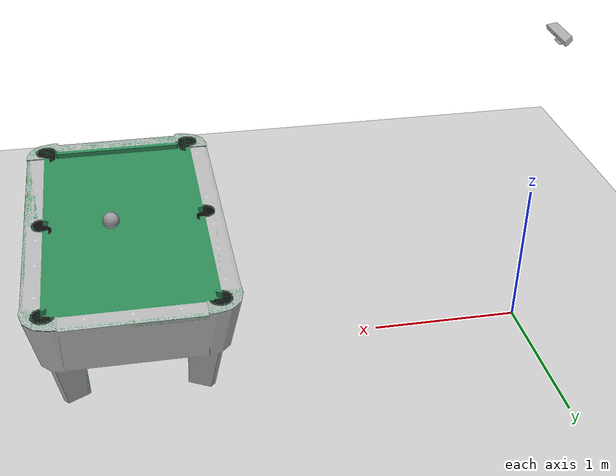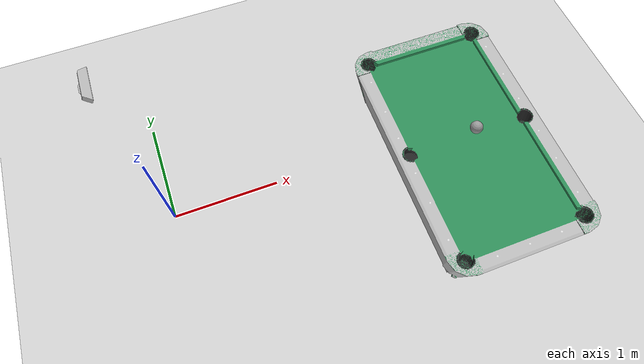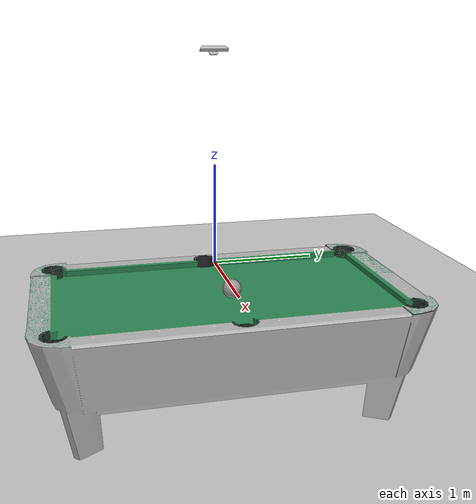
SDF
<?xml version="1.0"?>
<sdf version="1.4">
    <world name="default">

        <include><uri>model://ground_plane</uri></include>

        <include><uri>model://sun</uri></include>

        <!-- pool tabel -->
        <model name="pool_table">
            <pose> 0.5 0.9 0  0 0 0</pose>
            <static>true</static>
            <link name="body">
                <visual name="visual">
                    <pose> 0 0 0 0 0 0 </pose>
                    <geometry>
                        <mesh><uri>model://pool_table/pool_table.dae</uri></mesh>
                    </geometry>
                </visual>
                <collision name="table_collision">
                    <pose> 2.3 -1.4 0.6  0 0 0</pose>
                    <geometry>
                        <box>
                            <size>1.0 2 0.2</size>
                        </box>
                    </geometry>
                </collision>
            </link>
        </model>

        <model name="kinect">
            <pose>0 0 2.1 0 0.4 0</pose>
            <static>true</static>
            <link name="link">
                <inertial>
                    <mass>0.1</mass>
                </inertial>
                <collision name="collision">
                    <geometry>
                        <box>
                            <size>0.073000 0.276000 0.072000</size>
                        </box>
                    </geometry>
                </collision>
                <visual name="visual">
                    <geometry>
                        <mesh>
                            <uri>model://kinect/meshes/kinect.dae</uri>
                        </mesh>
                    </geometry>
                </visual>
                <sensor name="camera" type="depth">
                    <update_rate>20</update_rate>
                    <camera>
                        <horizontal_fov>1.047198</horizontal_fov>
                        <image>
                            <width>640</width>
                            <height>480</height>
                            <format>R8G8B8</format>
                        </image>
                        <clip>
                            <near>0.05</near>
                            <far>3</far>
                        </clip>
                    </camera>
                    <plugin name="camera_plugin" filename="libgazebo_ros_openni_kinect.so">
                        <baseline>0.2</baseline>
                        <alwaysOn>true</alwaysOn>
                        <updateRate>0.0</updateRate>
                        <cameraName>camera_ir</cameraName>
                        <imageTopicName>/camera/depth/image_raw</imageTopicName>
                        <cameraInfoTopicName>/camera/depth/camera_info</cameraInfoTopicName>
                        <depthImageTopicName>/camera/depth/image_raw</depthImageTopicName>
                        <depthImageInfoTopicName>/camera/depth/camera_info</depthImageInfoTopicName>
                        <pointCloudTopicName>/camera/depth/points</pointCloudTopicName>
                        <frameName>camera_link</frameName>
                        <pointCloudCutoff>0.05</pointCloudCutoff>
                        <distortionK1>0</distortionK1>
                        <distortionK2>0</distortionK2>
                        <distortionK3>0</distortionK3>
                        <distortionT1>0</distortionT1>
                        <distortionT2>0</distortionT2>
                        <CxPrime>0</CxPrime>
                        <Cx>0</Cx>
                        <Cy>0</Cy>
                        <focalLength>0</focalLength>
                        <hackBaseline>0</hackBaseline>
                        <static>true</static>
                    </plugin>
                </sensor>
            </link>
        </model>

        <!--pool balls-->
         <model name="pool_ball">
             <include>
                 <uri>model://pool_ball</uri>
             </include>
            <pose> 2.75 -0.5 0.770478   0 0 0</pose>

        </model>

    </world>
</sdf>

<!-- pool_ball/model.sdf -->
<sdf version='1.6'>
  <model name='pool_ball'>
    <link name='link_0'>
      <pose frame=''>0 0 0 0 -0 0</pose>
      <inertial>
        <mass>1</mass>
        <inertia>
          <ixx>0.1</ixx>
          <ixy>0</ixy>
          <ixz>0</ixz>
          <iyy>0.1</iyy>
          <iyz>0</iyz>
          <izz>0.1</izz>
        </inertia>
        <pose frame=''>0 0 0 0 -0 0</pose>
      </inertial>
      <gravity>1</gravity>
      <self_collide>0</self_collide>
      <kinematic>0</kinematic>
      <visual name='visual'>
        <pose frame=''>0 0 0 0 -0 0</pose>
        <geometry>
          <sphere>
            <radius>0.05715</radius>
          </sphere>
        </geometry>
        <material>
          <lighting>1</lighting>
          <script>
            <uri>file://media/materials/scripts/gazebo.material</uri>
            <name>Gazebo/Grey</name>
          </script>
          <ambient>0.3 0.3 0.3 1</ambient>
          <diffuse>0.7 0.7 0.7 1</diffuse>
          <specular>0.01 0.01 0.01 1</specular>
          <emissive>0 0 0 1</emissive>
          <shader type='vertex'>
            <normal_map>__default__</normal_map>
          </shader>
        </material>
        <cast_shadows>1</cast_shadows>
        <transparency>0</transparency>
      </visual>
      <collision name='collision'>
        <laser_retro>0</laser_retro>
        <max_contacts>10</max_contacts>
        <pose frame=''>0 0 0 0 -0 0</pose>
        <geometry>
          <sphere>
            <radius>0.05715</radius>
          </sphere>
        </geometry>
        <surface>
          <friction>
            <ode>
              <mu>1</mu>
              <mu2>1</mu2>
              <fdir1>0 0 0</fdir1>
              <slip1>0</slip1>
              <slip2>0</slip2>
            </ode>
            <torsional>
              <coefficient>1</coefficient>
              <patch_radius>0</patch_radius>
              <surface_radius>0</surface_radius>
              <use_patch_radius>1</use_patch_radius>
              <ode>
                <slip>0</slip>
              </ode>
            </torsional>
          </friction>
          <bounce>
            <restitution_coefficient>0</restitution_coefficient>
            <threshold>1e+06</threshold>
          </bounce>
          <contact>
            <collide_without_contact>0</collide_without_contact>
            <collide_without_contact_bitmask>1</collide_without_contact_bitmask>
            <collide_bitmask>1</collide_bitmask>
            <ode>
              <soft_cfm>0</soft_cfm>
              <soft_erp>0.2</soft_erp>
              <kp>1e+13</kp>
              <kd>1</kd>
              <max_vel>0.01</max_vel>
              <min_depth>0</min_depth>
            </ode>
            <bullet>
              <split_impulse>1</split_impulse>
              <split_impulse_penetration_threshold>-0.01</split_impulse_penetration_threshold>
              <soft_cfm>0</soft_cfm>
              <soft_erp>0.2</soft_erp>
              <kp>1e+13</kp>
              <kd>1</kd>
            </bullet>
          </contact>
        </surface>
      </collision>
    </link>
    <static>0</static>
    <allow_auto_disable>1</allow_auto_disable>
  </model>
</sdf>
